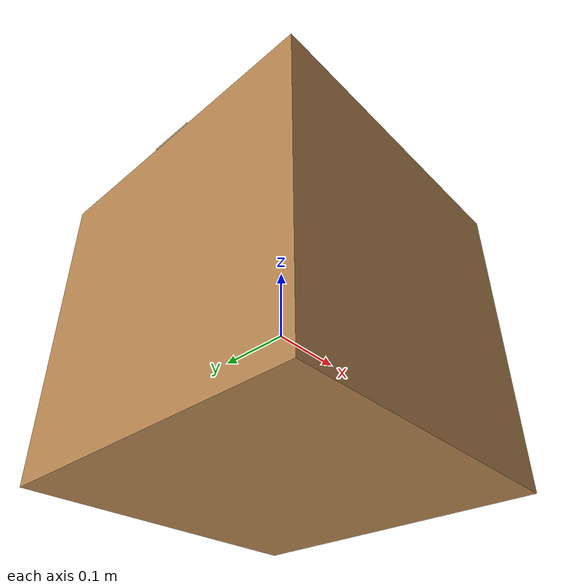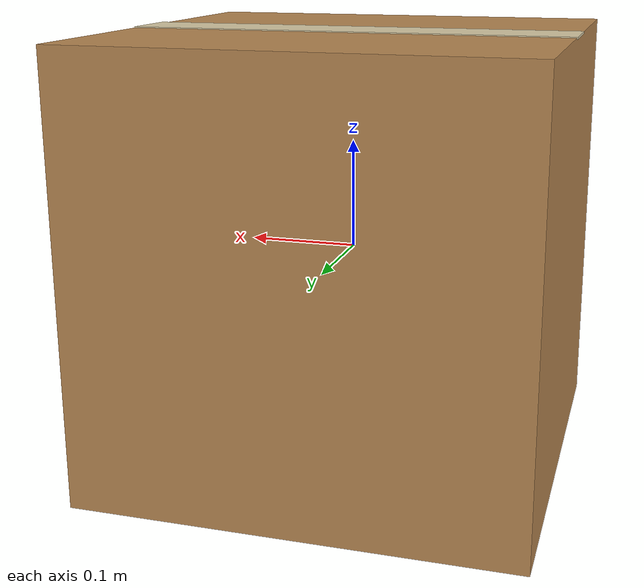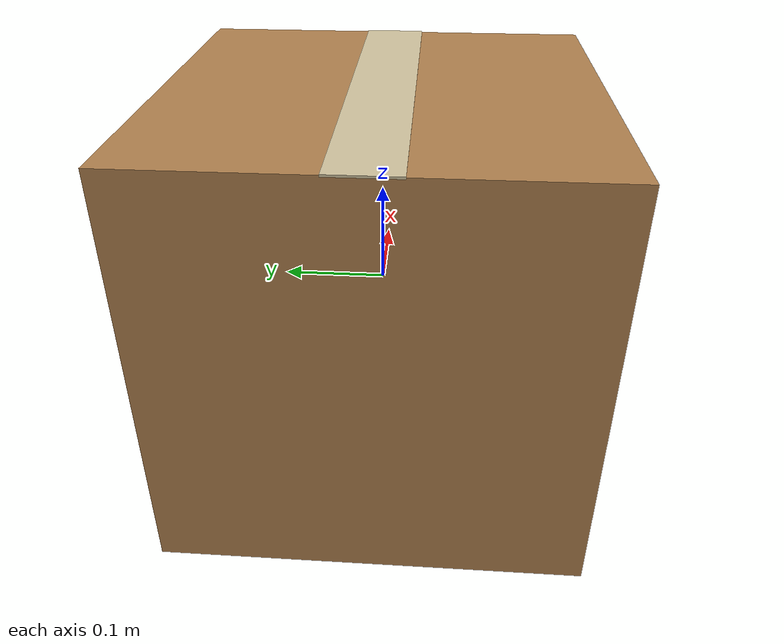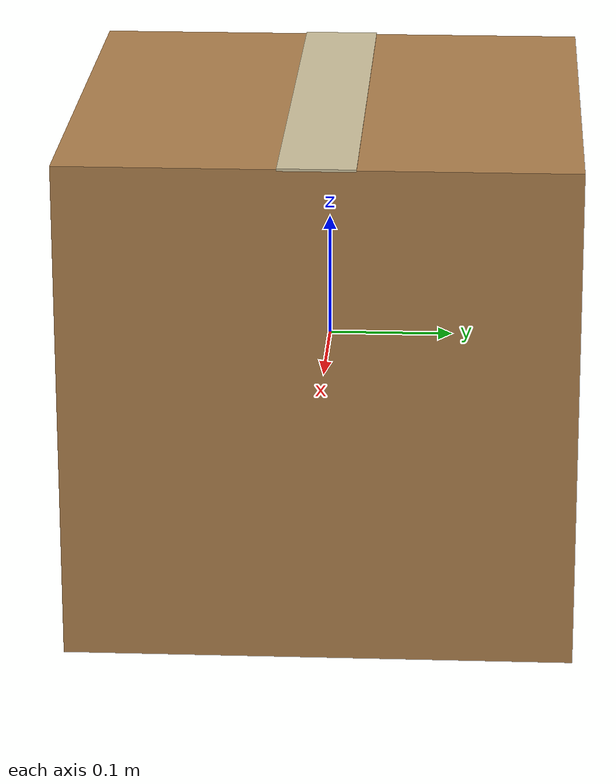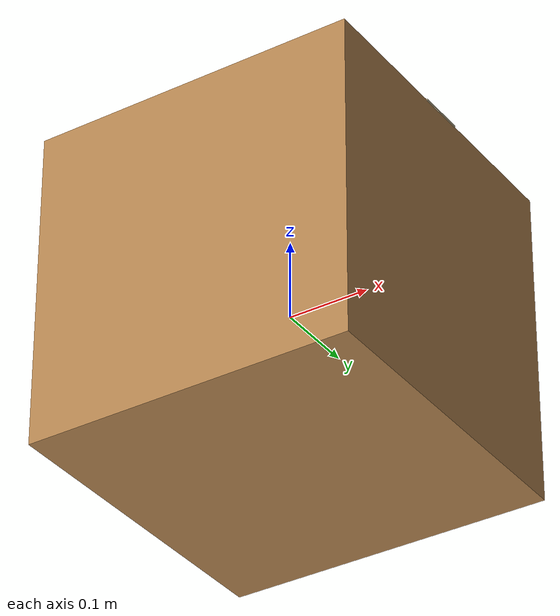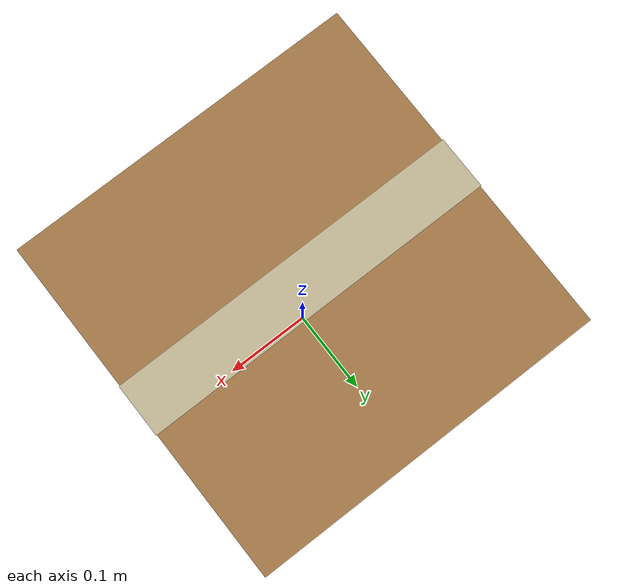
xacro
<?xml version="1.0"?>
<robot name="cargo_box" xmlns:xacro="http://www.ros.org/wiki/xacro">

  <xacro:arg name="size"  default="0.4"/>
  <xacro:arg name="mass"  default="2.0"/>
  <xacro:arg name="color" default="0.72 0.53 0.32 1"/>
  <xacro:property name="a" value="$(arg size)"/>
  <xacro:property name="m" value="$(arg mass)"/>

  <link name="box">
    <inertial>
      <mass value="${m}"/>
      <inertia ixx="${m*a*a/6}" ixy="0" ixz="0" iyy="${m*a*a/6}" iyz="0" izz="${m*a*a/6}"/>
    </inertial>
    <visual>
      <geometry><box size="${a} ${a} ${a}"/></geometry>
      <material name="cargo"><color rgba="$(arg color)"/></material>
    </visual>
    <!-- bang keo tren nap thung -->
    <visual>
      <origin xyz="0 0 ${a/2}"/>
      <geometry><box size="${a + 0.002} 0.06 0.002"/></geometry>
      <material name="tape"><color rgba="0.85 0.80 0.65 1"/></material>
    </visual>
    <collision>
      <geometry><box size="${a} ${a} ${a}"/></geometry>
    </collision>
  </link>

  <gazebo reference="box">
    <mu1>0.8</mu1>
    <mu2>0.8</mu2>
  </gazebo>

</robot>
